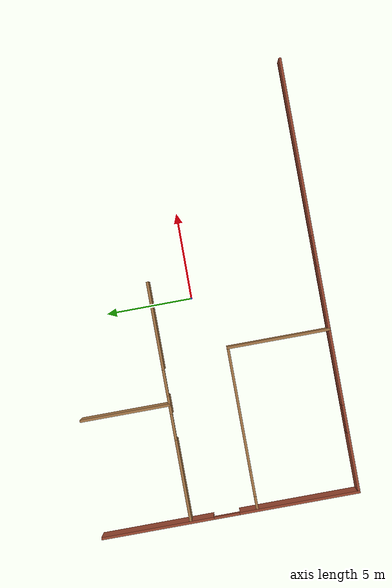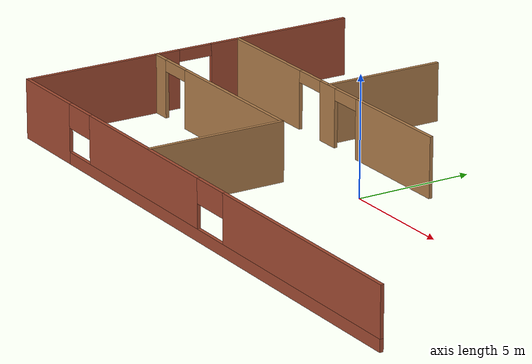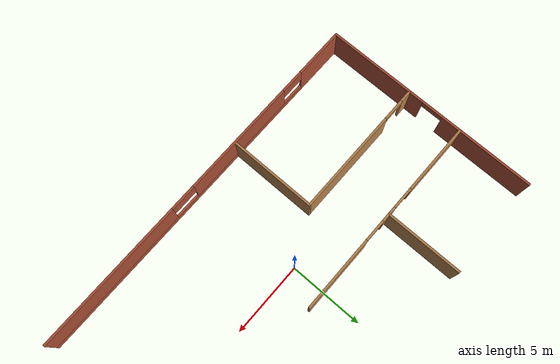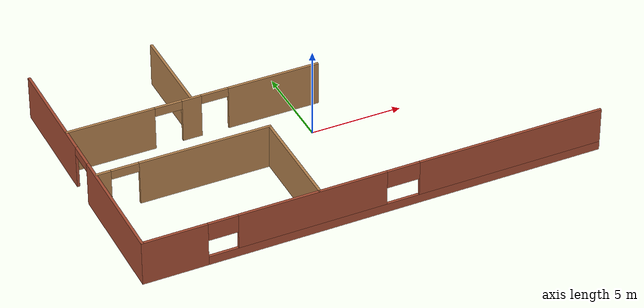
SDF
<sdf version="1.6">
 <model name="myhouse">
  <link name="Wall_1">
   <pose>-12.55 -0.012047 0 0 0 -1.5708</pose>
   <visual name="Wall_1_Visual_0">
    <pose>-4.24352 0 1.25 0 -0 0</pose>
    <geometry><box><size>6.51297 0.15 2.5</size></box></geometry>
    <material>
     <script><uri>file://media/materials/scripts/gazebo.material</uri><name>Gazebo/Bricks</name></script>
     <ambient>1 1 1 1</ambient>
     <shader type="pixel"/>
     <diffuse>1 1 1 1</diffuse>
     <specular>0.2 0.2 0.2 1</specular>
     <emissive>0 0 0 1</emissive>
    </material>
    <meta><layer>0</layer></meta>
   </visual>
   <visual name="Wall_1_Visual_1">
    <pose>4.00648 0 1.25 0 -0 0</pose>
    <geometry><box><size>6.98703 0.15 2.5</size></box></geometry>
    <material>
     <script><uri>file://media/materials/scripts/gazebo.material</uri><name>Gazebo/Bricks</name></script>
     <ambient>1 1 1 1</ambient>
     <shader type="pixel"/>
     <diffuse>1 1 1 1</diffuse>
     <specular>0.2 0.2 0.2 1</specular>
     <emissive>0 0 0 1</emissive>
    </material>
    <meta><layer>0</layer></meta>
   </visual>
   <visual name="Wall_1_Visual_2">
    <pose>-0.237035 0 2.25 0 -0 0</pose>
    <geometry><box><size>1.5 0.15 0.5</size></box></geometry>
    <material>
     <script><uri>file://media/materials/scripts/gazebo.material</uri><name>Gazebo/Bricks</name></script>
     <ambient>1 1 1 1</ambient>
     <shader type="pixel"/>
     <diffuse>1 1 1 1</diffuse>
     <specular>0.2 0.2 0.2 1</specular>
     <emissive>0 0 0 1</emissive>
    </material>
    <meta><layer>0</layer></meta>
   </visual>
   <collision name="Wall_1_Collision_0">
    <pose>-4.24352 0 1.25 0 -0 0</pose>
    <geometry><box><size>6.51297 0.15 2.5</size></box></geometry>
    <surface>
     <friction>
      <ode><mu>1</mu><mu2>1</mu2><fdir1>0 0 0</fdir1><slip1>0</slip1><slip2>0</slip2></ode>
      <torsional>
       <coefficient>1</coefficient>
       <patch_radius>0</patch_radius>
       <surface_radius>0</surface_radius>
       <use_patch_radius>1</use_patch_radius>
       <ode><slip>0</slip></ode>
      </torsional>
     </friction>
     <bounce><restitution_coefficient>0</restitution_coefficient><threshold>1e+06</threshold></bounce>
     <contact>
      <collide_without_contact>0</collide_without_contact>
      <collide_without_contact_bitmask>1</collide_without_contact_bitmask>
      <collide_bitmask>1</collide_bitmask>
      <ode>
       <soft_cfm>0</soft_cfm>
       <soft_erp>0.2</soft_erp>
       <kp>1e+13</kp>
       <kd>1</kd>
       <max_vel>0.01</max_vel>
       <min_depth>0</min_depth>
      </ode>
      <bullet>
       <split_impulse>1</split_impulse>
       <split_impulse_penetration_threshold>-0.01</split_impulse_penetration_threshold>
       <soft_cfm>0</soft_cfm>
       <soft_erp>0.2</soft_erp>
       <kp>1e+13</kp>
       <kd>1</kd>
      </bullet>
     </contact>
    </surface>
   </collision>
   <collision name="Wall_1_Collision_1">
    <pose>4.00648 0 1.25 0 -0 0</pose>
    <geometry><box><size>6.98703 0.15 2.5</size></box></geometry>
    <surface>
     <friction>
      <ode><mu>1</mu><mu2>1</mu2><fdir1>0 0 0</fdir1><slip1>0</slip1><slip2>0</slip2></ode>
      <torsional>
       <coefficient>1</coefficient>
       <patch_radius>0</patch_radius>
       <surface_radius>0</surface_radius>
       <use_patch_radius>1</use_patch_radius>
       <ode><slip>0</slip></ode>
      </torsional>
     </friction>
     <bounce><restitution_coefficient>0</restitution_coefficient><threshold>1e+06</threshold></bounce>
     <contact>
      <collide_without_contact>0</collide_without_contact>
      <collide_without_contact_bitmask>1</collide_without_contact_bitmask>
      <collide_bitmask>1</collide_bitmask>
      <ode>
       <soft_cfm>0</soft_cfm>
       <soft_erp>0.2</soft_erp>
       <kp>1e+13</kp>
       <kd>1</kd>
       <max_vel>0.01</max_vel>
       <min_depth>0</min_depth>
      </ode>
      <bullet>
       <split_impulse>1</split_impulse>
       <split_impulse_penetration_threshold>-0.01</split_impulse_penetration_threshold>
       <soft_cfm>0</soft_cfm>
       <soft_erp>0.2</soft_erp>
       <kp>1e+13</kp>
       <kd>1</kd>
      </bullet>
     </contact>
    </surface>
   </collision>
   <collision name="Wall_1_Collision_2">
    <pose>-0.237035 0 2.25 0 -0 0</pose>
    <geometry><box><size>1.5 0.15 0.5</size></box></geometry>
    <surface>
     <friction>
      <ode><mu>1</mu><mu2>1</mu2><fdir1>0 0 0</fdir1><slip1>0</slip1><slip2>0</slip2></ode>
      <torsional>
       <coefficient>1</coefficient>
       <patch_radius>0</patch_radius>
       <surface_radius>0</surface_radius>
       <use_patch_radius>1</use_patch_radius>
       <ode><slip>0</slip></ode>
      </torsional>
     </friction>
     <bounce><restitution_coefficient>0</restitution_coefficient><threshold>1e+06</threshold></bounce>
     <contact>
      <collide_without_contact>0</collide_without_contact>
      <collide_without_contact_bitmask>1</collide_without_contact_bitmask>
      <collide_bitmask>1</collide_bitmask>
      <ode>
       <soft_cfm>0</soft_cfm>
       <soft_erp>0.2</soft_erp>
       <kp>1e+13</kp>
       <kd>1</kd>
       <max_vel>0.01</max_vel>
       <min_depth>0</min_depth>
      </ode>
      <bullet>
       <split_impulse>1</split_impulse>
       <split_impulse_penetration_threshold>-0.01</split_impulse_penetration_threshold>
       <soft_cfm>0</soft_cfm>
       <soft_erp>0.2</soft_erp>
       <kp>1e+13</kp>
       <kd>1</kd>
      </bullet>
     </contact>
    </surface>
   </collision>
  </link>
  <link name="Wall_10">
   <pose>-3.11994 -4.47756 0 0 0 -1.5708</pose>
   <visual name="Wall_10_Visual">
    <pose>0 0 1.25 0 -0 0</pose>
    <geometry><box><size>6 0.15 2.5</size></box></geometry>
    <material>
     <script><uri>file://media/materials/scripts/gazebo.material</uri><name>Gazebo/Wood</name></script>
     <ambient>0.435294 0.796078 0.67451 1</ambient>
     <shader type="pixel"/>
     <diffuse>1 1 1 1</diffuse>
     <specular>0.2 0.2 0.2 1</specular>
     <emissive>0 0 0 1</emissive>
    </material>
    <meta><layer>0</layer></meta>
   </visual>
   <collision name="Wall_10_Collision">
    <pose>0 0 1.25 0 -0 0</pose>
    <geometry><box><size>6 0.15 2.5</size></box></geometry>
    <surface>
     <friction>
      <ode><mu>1</mu><mu2>1</mu2><fdir1>0 0 0</fdir1><slip1>0</slip1><slip2>0</slip2></ode>
      <torsional>
       <coefficient>1</coefficient>
       <patch_radius>0</patch_radius>
       <surface_radius>0</surface_radius>
       <use_patch_radius>1</use_patch_radius>
       <ode><slip>0</slip></ode>
      </torsional>
     </friction>
     <bounce><restitution_coefficient>0</restitution_coefficient><threshold>1e+06</threshold></bounce>
     <contact>
      <collide_without_contact>0</collide_without_contact>
      <collide_without_contact_bitmask>1</collide_without_contact_bitmask>
      <collide_bitmask>1</collide_bitmask>
      <ode>
       <soft_cfm>0</soft_cfm>
       <soft_erp>0.2</soft_erp>
       <kp>1e+13</kp>
       <kd>1</kd>
       <max_vel>0.01</max_vel>
       <min_depth>0</min_depth>
      </ode>
      <bullet>
       <split_impulse>1</split_impulse>
       <split_impulse_penetration_threshold>-0.01</split_impulse_penetration_threshold>
       <soft_cfm>0</soft_cfm>
       <soft_erp>0.2</soft_erp>
       <kp>1e+13</kp>
       <kd>1</kd>
      </bullet>
     </contact>
    </surface>
   </collision>
  </link>
  <link name="Wall_14">
   <pose>-5.73434 4.88705 0 0 -0 1.5708</pose>
   <visual name="Wall_14_Visual">
    <pose>0 0 1.25 0 -0 0</pose>
    <geometry><box><size>5.25 0.15 2.5</size></box></geometry>
    <material>
     <script><uri>file://media/materials/scripts/gazebo.material</uri><name>Gazebo/Wood</name></script>
     <ambient>1 0 0 1</ambient>
     <shader type="pixel"/>
     <diffuse>1 1 1 1</diffuse>
     <specular>0.2 0.2 0.2 1</specular>
     <emissive>0 0 0 1</emissive>
    </material>
    <meta><layer>0</layer></meta>
   </visual>
   <collision name="Wall_14_Collision">
    <pose>0 0 1.25 0 -0 0</pose>
    <geometry><box><size>5.25 0.15 2.5</size></box></geometry>
    <surface>
     <friction>
      <ode><mu>1</mu><mu2>1</mu2><fdir1>0 0 0</fdir1><slip1>0</slip1><slip2>0</slip2></ode>
      <torsional>
       <coefficient>1</coefficient>
       <patch_radius>0</patch_radius>
       <surface_radius>0</surface_radius>
       <use_patch_radius>1</use_patch_radius>
       <ode><slip>0</slip></ode>
      </torsional>
     </friction>
     <bounce><restitution_coefficient>0</restitution_coefficient><threshold>1e+06</threshold></bounce>
     <contact>
      <collide_without_contact>0</collide_without_contact>
      <collide_without_contact_bitmask>1</collide_without_contact_bitmask>
      <collide_bitmask>1</collide_bitmask>
      <ode>
       <soft_cfm>0</soft_cfm>
       <soft_erp>0.2</soft_erp>
       <kp>1e+13</kp>
       <kd>1</kd>
       <max_vel>0.01</max_vel>
       <min_depth>0</min_depth>
      </ode>
      <bullet>
       <split_impulse>1</split_impulse>
       <split_impulse_penetration_threshold>-0.01</split_impulse_penetration_threshold>
       <soft_cfm>0</soft_cfm>
       <soft_erp>0.2</soft_erp>
       <kp>1e+13</kp>
       <kd>1</kd>
      </bullet>
     </contact>
    </surface>
   </collision>
  </link>
  <link name="Wall_2">
   <pose>0 -7.43705 0 0 -0 0</pose>
   <visual name="Wall_2_Visual_0">
    <pose>-10.8742 0 1.25 0 -0 0</pose>
    <geometry><box><size>3.50151 0.15 2.5</size></box></geometry>
    <material>
     <script><uri>file://media/materials/scripts/gazebo.material</uri><name>Gazebo/Bricks</name></script>
     <ambient>1 1 1 1</ambient>
     <shader type="pixel"/>
     <diffuse>1 1 1 1</diffuse>
     <specular>0.2 0.2 0.2 1</specular>
     <emissive>0 0 0 1</emissive>
    </material>
    <meta><layer>0</layer></meta>
   </visual>
   <visual name="Wall_2_Visual_1">
    <pose>1.75075 0 0.25 0 -0 0</pose>
    <geometry><box><size>21.7485 0.15 0.5</size></box></geometry>
    <material>
     <script><uri>file://media/materials/scripts/gazebo.material</uri><name>Gazebo/Bricks</name></script>
     <ambient>1 1 1 1</ambient>
     <shader type="pixel"/>
     <diffuse>1 1 1 1</diffuse>
     <specular>0.2 0.2 0.2 1</specular>
     <emissive>0 0 0 1</emissive>
    </material>
    <meta><layer>0</layer></meta>
   </visual>
   <visual name="Wall_2_Visual_2">
    <pose>-3.49871 0 1.5 0 -0 0</pose>
    <geometry><box><size>8.04956 0.15 2</size></box></geometry>
    <material>
     <script><uri>file://media/materials/scripts/gazebo.material</uri><name>Gazebo/Bricks</name></script>
     <ambient>1 1 1 1</ambient>
     <shader type="pixel"/>
     <diffuse>1 1 1 1</diffuse>
     <specular>0.2 0.2 0.2 1</specular>
     <emissive>0 0 0 1</emissive>
    </material>
    <meta><layer>0</layer></meta>
   </visual>
   <visual name="Wall_2_Visual_3">
    <pose>7.47553 0 1.5 0 -0 0</pose>
    <geometry><box><size>10.2989 0.15 2</size></box></geometry>
    <material>
     <script><uri>file://media/materials/scripts/gazebo.material</uri><name>Gazebo/Bricks</name></script>
     <ambient>1 1 1 1</ambient>
     <shader type="pixel"/>
     <diffuse>1 1 1 1</diffuse>
     <specular>0.2 0.2 0.2 1</specular>
     <emissive>0 0 0 1</emissive>
    </material>
    <meta><layer>0</layer></meta>
   </visual>
   <visual name="Wall_2_Visual_4">
    <pose>-8.32349 0 2 0 -0 0</pose>
    <geometry><box><size>1.6 0.15 1</size></box></geometry>
    <material>
     <script><uri>file://media/materials/scripts/gazebo.material</uri><name>Gazebo/Bricks</name></script>
     <ambient>1 1 1 1</ambient>
     <shader type="pixel"/>
     <diffuse>1 1 1 1</diffuse>
     <specular>0.2 0.2 0.2 1</specular>
     <emissive>0 0 0 1</emissive>
    </material>
    <meta><layer>0</layer></meta>
   </visual>
   <visual name="Wall_2_Visual_5">
    <pose>1.42607 0 2 0 -0 0</pose>
    <geometry><box><size>1.8 0.15 1</size></box></geometry>
    <material>
     <script><uri>file://media/materials/scripts/gazebo.material</uri><name>Gazebo/Bricks</name></script>
     <ambient>1 1 1 1</ambient>
     <shader type="pixel"/>
     <diffuse>1 1 1 1</diffuse>
     <specular>0.2 0.2 0.2 1</specular>
     <emissive>0 0 0 1</emissive>
    </material>
    <meta><layer>0</layer></meta>
   </visual>
   <collision name="Wall_2_Collision_0">
    <pose>-10.8742 0 1.25 0 -0 0</pose>
    <geometry><box><size>3.50151 0.15 2.5</size></box></geometry>
    <surface>
     <friction>
      <ode><mu>1</mu><mu2>1</mu2><fdir1>0 0 0</fdir1><slip1>0</slip1><slip2>0</slip2></ode>
      <torsional>
       <coefficient>1</coefficient>
       <patch_radius>0</patch_radius>
       <surface_radius>0</surface_radius>
       <use_patch_radius>1</use_patch_radius>
       <ode><slip>0</slip></ode>
      </torsional>
     </friction>
     <bounce><restitution_coefficient>0</restitution_coefficient><threshold>1e+06</threshold></bounce>
     <contact>
      <collide_without_contact>0</collide_without_contact>
      <collide_without_contact_bitmask>1</collide_without_contact_bitmask>
      <collide_bitmask>1</collide_bitmask>
      <ode>
       <soft_cfm>0</soft_cfm>
       <soft_erp>0.2</soft_erp>
       <kp>1e+13</kp>
       <kd>1</kd>
       <max_vel>0.01</max_vel>
       <min_depth>0</min_depth>
      </ode>
      <bullet>
       <split_impulse>1</split_impulse>
       <split_impulse_penetration_threshold>-0.01</split_impulse_penetration_threshold>
       <soft_cfm>0</soft_cfm>
       <soft_erp>0.2</soft_erp>
       <kp>1e+13</kp>
       <kd>1</kd>
      </bullet>
     </contact>
    </surface>
   </collision>
   <collision name="Wall_2_Collision_1">
    <pose>1.75075 0 0.25 0 -0 0</pose>
    <geometry><box><size>21.7485 0.15 0.5</size></box></geometry>
    <surface>
     <friction>
      <ode><mu>1</mu><mu2>1</mu2><fdir1>0 0 0</fdir1><slip1>0</slip1><slip2>0</slip2></ode>
      <torsional>
       <coefficient>1</coefficient>
       <patch_radius>0</patch_radius>
       <surface_radius>0</surface_radius>
       <use_patch_radius>1</use_patch_radius>
       <ode><slip>0</slip></ode>
      </torsional>
     </friction>
     <bounce><restitution_coefficient>0</restitution_coefficient><threshold>1e+06</threshold></bounce>
     <contact>
      <collide_without_contact>0</collide_without_contact>
      <collide_without_contact_bitmask>1</collide_without_contact_bitmask>
      <collide_bitmask>1</collide_bitmask>
      <ode>
       <soft_cfm>0</soft_cfm>
       <soft_erp>0.2</soft_erp>
       <kp>1e+13</kp>
       <kd>1</kd>
       <max_vel>0.01</max_vel>
       <min_depth>0</min_depth>
      </ode>
      <bullet>
       <split_impulse>1</split_impulse>
       <split_impulse_penetration_threshold>-0.01</split_impulse_penetration_threshold>
       <soft_cfm>0</soft_cfm>
       <soft_erp>0.2</soft_erp>
       <kp>1e+13</kp>
       <kd>1</kd>
      </bullet>
     </contact>
    </surface>
   </collision>
   <collision name="Wall_2_Collision_2">
    <pose>-3.49871 0 1.5 0 -0 0</pose>
    <geometry><box><size>8.04956 0.15 2</size></box></geometry>
    <surface>
     <friction>
      <ode><mu>1</mu><mu2>1</mu2><fdir1>0 0 0</fdir1><slip1>0</slip1><slip2>0</slip2></ode>
      <torsional>
       <coefficient>1</coefficient>
       <patch_radius>0</patch_radius>
       <surface_radius>0</surface_radius>
       <use_patch_radius>1</use_patch_radius>
       <ode><slip>0</slip></ode>
      </torsional>
     </friction>
     <bounce><restitution_coefficient>0</restitution_coefficient><threshold>1e+06</threshold></bounce>
     <contact>
      <collide_without_contact>0</collide_without_contact>
      <collide_without_contact_bitmask>1</collide_without_contact_bitmask>
      <collide_bitmask>1</collide_bitmask>
      <ode>
       <soft_cfm>0</soft_cfm>
       <soft_erp>0.2</soft_erp>
       <kp>1e+13</kp>
       <kd>1</kd>
       <max_vel>0.01</max_vel>
       <min_depth>0</min_depth>
      </ode>
      <bullet>
       <split_impulse>1</split_impulse>
       <split_impulse_penetration_threshold>-0.01</split_impulse_penetration_threshold>
       <soft_cfm>0</soft_cfm>
       <soft_erp>0.2</soft_erp>
       <kp>1e+13</kp>
       <kd>1</kd>
      </bullet>
     </contact>
    </surface>
   </collision>
   <collision name="Wall_2_Collision_3">
    <pose>7.47553 0 1.5 0 -0 0</pose>
    <geometry><box><size>10.2989 0.15 2</size></box></geometry>
    <surface>
     <friction>
      <ode><mu>1</mu><mu2>1</mu2><fdir1>0 0 0</fdir1><slip1>0</slip1><slip2>0</slip2></ode>
      <torsional>
       <coefficient>1</coefficient>
       <patch_radius>0</patch_radius>
       <surface_radius>0</surface_radius>
       <use_patch_radius>1</use_patch_radius>
       <ode><slip>0</slip></ode>
      </torsional>
     </friction>
     <bounce><restitution_coefficient>0</restitution_coefficient><threshold>1e+06</threshold></bounce>
     <contact>
      <collide_without_contact>0</collide_without_contact>
      <collide_without_contact_bitmask>1</collide_without_contact_bitmask>
      <collide_bitmask>1</collide_bitmask>
      <ode>
       <soft_cfm>0</soft_cfm>
       <soft_erp>0.2</soft_erp>
       <kp>1e+13</kp>
       <kd>1</kd>
       <max_vel>0.01</max_vel>
       <min_depth>0</min_depth>
      </ode>
      <bullet>
       <split_impulse>1</split_impulse>
       <split_impulse_penetration_threshold>-0.01</split_impulse_penetration_threshold>
       <soft_cfm>0</soft_cfm>
       <soft_erp>0.2</soft_erp>
       <kp>1e+13</kp>
       <kd>1</kd>
      </bullet>
     </contact>
    </surface>
   </collision>
   <collision name="Wall_2_Collision_5">
    <pose>1.42607 0 2 0 -0 0</pose>
    <geometry><box><size>1.8 0.15 1</size></box></geometry>
    <surface>
     <friction>
      <ode><mu>1</mu><mu2>1</mu2><fdir1>0 0 0</fdir1><slip1>0</slip1><slip2>0</slip2></ode>
      <torsional>
       <coefficient>1</coefficient>
       <patch_radius>0</patch_radius>
       <surface_radius>0</surface_radius>
       <use_patch_radius>1</use_patch_radius>
       <ode><slip>0</slip></ode>
      </torsional>
     </friction>
     <bounce><restitution_coefficient>0</restitution_coefficient><threshold>1e+06</threshold></bounce>
     <contact>
      <collide_without_contact>0</collide_without_contact>
      <collide_without_contact_bitmask>1</collide_without_contact_bitmask>
      <collide_bitmask>1</collide_bitmask>
      <ode>
       <soft_cfm>0</soft_cfm>
       <soft_erp>0.2</soft_erp>
       <kp>1e+13</kp>
       <kd>1</kd>
       <max_vel>0.01</max_vel>
       <min_depth>0</min_depth>
      </ode>
      <bullet>
       <split_impulse>1</split_impulse>
       <split_impulse_penetration_threshold>-0.01</split_impulse_penetration_threshold>
       <soft_cfm>0</soft_cfm>
       <soft_erp>0.2</soft_erp>
       <kp>1e+13</kp>
       <kd>1</kd>
      </bullet>
     </contact>
    </surface>
   </collision>
   <collision name="Wall_2_Collision_4">
    <pose>-8.32349 0 2 0 -0 0</pose>
    <geometry><box><size>1.6 0.15 1</size></box></geometry>
    <surface>
     <friction>
      <ode><mu>1</mu><mu2>1</mu2><fdir1>0 0 0</fdir1><slip1>0</slip1><slip2>0</slip2></ode>
      <torsional>
       <coefficient>1</coefficient>
       <patch_radius>0</patch_radius>
       <surface_radius>0</surface_radius>
       <use_patch_radius>1</use_patch_radius>
       <ode><slip>0</slip></ode>
      </torsional>
     </friction>
     <bounce><restitution_coefficient>0</restitution_coefficient><threshold>1e+06</threshold></bounce>
     <contact>
      <collide_without_contact>0</collide_without_contact>
      <collide_without_contact_bitmask>1</collide_without_contact_bitmask>
      <collide_bitmask>1</collide_bitmask>
      <ode>
       <soft_cfm>0</soft_cfm>
       <soft_erp>0.2</soft_erp>
       <kp>1e+13</kp>
       <kd>1</kd>
       <max_vel>0.01</max_vel>
       <min_depth>0</min_depth>
      </ode>
      <bullet>
       <split_impulse>1</split_impulse>
       <split_impulse_penetration_threshold>-0.01</split_impulse_penetration_threshold>
       <soft_cfm>0</soft_cfm>
       <soft_erp>0.2</soft_erp>
       <kp>1e+13</kp>
       <kd>1</kd>
      </bullet>
     </contact>
    </surface>
   </collision>
  </link>
  <link name="Wall_6">
   <pose>-5.59147 2.30893 0 0 -0 0</pose>
   <visual name="Wall_6_Visual_0">
    <pose>-4.58914 0 1.25 0 -0 0</pose>
    <geometry><box><size>4.82171 0.15 2.5</size></box></geometry>
    <material>
     <script><uri>file://media/materials/scripts/gazebo.material</uri><name>Gazebo/Wood</name></script>
     <ambient>1 0 0 1</ambient>
     <shader type="pixel"/>
     <diffuse>1 1 1 1</diffuse>
     <specular>0.2 0.2 0.2 1</specular>
     <emissive>0 0 0 1</emissive>
    </material>
    <meta><layer>0</layer></meta>
   </visual>
   <visual name="Wall_6_Visual_1">
    <pose>-0.14426 0 1.25 0 -0 0</pose>
    <geometry><box><size>1.06805 0.15 2.5</size></box></geometry>
    <material>
     <script><uri>file://media/materials/scripts/gazebo.material</uri><name>Gazebo/Wood</name></script>
     <ambient>1 0 0 1</ambient>
     <shader type="pixel"/>
     <diffuse>1 1 1 1</diffuse>
     <specular>0.2 0.2 0.2 1</specular>
     <emissive>0 0 0 1</emissive>
    </material>
    <meta><layer>0</layer></meta>
   </visual>
   <visual name="Wall_6_Visual_2">
    <pose>4.44488 0 1.25 0 -0 0</pose>
    <geometry><box><size>5.11024 0.15 2.5</size></box></geometry>
    <material>
     <script><uri>file://media/materials/scripts/gazebo.material</uri><name>Gazebo/Wood</name></script>
     <ambient>1 0 0 1</ambient>
     <shader type="pixel"/>
     <diffuse>1 1 1 1</diffuse>
     <specular>0.2 0.2 0.2 1</specular>
     <emissive>0 0 0 1</emissive>
    </material>
    <meta><layer>0</layer></meta>
   </visual>
   <visual name="Wall_6_Visual_3">
    <pose>-1.42829 0 2.25 0 -0 0</pose>
    <geometry><box><size>1.5 0.15 0.5</size></box></geometry>
    <material>
     <script><uri>file://media/materials/scripts/gazebo.material</uri><name>Gazebo/Wood</name></script>
     <ambient>1 0 0 1</ambient>
     <shader type="pixel"/>
     <diffuse>1 1 1 1</diffuse>
     <specular>0.2 0.2 0.2 1</specular>
     <emissive>0 0 0 1</emissive>
    </material>
    <meta><layer>0</layer></meta>
   </visual>
   <visual name="Wall_6_Visual_4">
    <pose>1.13976 0 2.25 0 -0 0</pose>
    <geometry><box><size>1.5 0.15 0.5</size></box></geometry>
    <material>
     <script><uri>file://media/materials/scripts/gazebo.material</uri><name>Gazebo/Wood</name></script>
     <ambient>1 0 0 1</ambient>
     <shader type="pixel"/>
     <diffuse>1 1 1 1</diffuse>
     <specular>0.2 0.2 0.2 1</specular>
     <emissive>0 0 0 1</emissive>
    </material>
    <meta><layer>0</layer></meta>
   </visual>
   <collision name="Wall_6_Collision_0">
    <pose>-4.58914 0 1.25 0 -0 0</pose>
    <geometry><box><size>4.82171 0.15 2.5</size></box></geometry>
    <surface>
     <friction>
      <ode><mu>1</mu><mu2>1</mu2><fdir1>0 0 0</fdir1><slip1>0</slip1><slip2>0</slip2></ode>
      <torsional>
       <coefficient>1</coefficient>
       <patch_radius>0</patch_radius>
       <surface_radius>0</surface_radius>
       <use_patch_radius>1</use_patch_radius>
       <ode><slip>0</slip></ode>
      </torsional>
     </friction>
     <bounce><restitution_coefficient>0</restitution_coefficient><threshold>1e+06</threshold></bounce>
     <contact>
      <collide_without_contact>0</collide_without_contact>
      <collide_without_contact_bitmask>1</collide_without_contact_bitmask>
      <collide_bitmask>1</collide_bitmask>
      <ode>
       <soft_cfm>0</soft_cfm>
       <soft_erp>0.2</soft_erp>
       <kp>1e+13</kp>
       <kd>1</kd>
       <max_vel>0.01</max_vel>
       <min_depth>0</min_depth>
      </ode>
      <bullet>
       <split_impulse>1</split_impulse>
       <split_impulse_penetration_threshold>-0.01</split_impulse_penetration_threshold>
       <soft_cfm>0</soft_cfm>
       <soft_erp>0.2</soft_erp>
       <kp>1e+13</kp>
       <kd>1</kd>
      </bullet>
     </contact>
    </surface>
   </collision>
   <collision name="Wall_6_Collision_2">
    <pose>4.44488 0 1.25 0 -0 0</pose>
    <geometry><box><size>5.11024 0.15 2.5</size></box></geometry>
    <surface>
     <friction>
      <ode><mu>1</mu><mu2>1</mu2><fdir1>0 0 0</fdir1><slip1>0</slip1><slip2>0</slip2></ode>
      <torsional>
       <coefficient>1</coefficient>
       <patch_radius>0</patch_radius>
       <surface_radius>0</surface_radius>
       <use_patch_radius>1</use_patch_radius>
       <ode><slip>0</slip></ode>
      </torsional>
     </friction>
     <bounce><restitution_coefficient>0</restitution_coefficient><threshold>1e+06</threshold></bounce>
     <contact>
      <collide_without_contact>0</collide_without_contact>
      <collide_without_contact_bitmask>1</collide_without_contact_bitmask>
      <collide_bitmask>1</collide_bitmask>
      <ode>
       <soft_cfm>0</soft_cfm>
       <soft_erp>0.2</soft_erp>
       <kp>1e+13</kp>
       <kd>1</kd>
       <max_vel>0.01</max_vel>
       <min_depth>0</min_depth>
      </ode>
      <bullet>
       <split_impulse>1</split_impulse>
       <split_impulse_penetration_threshold>-0.01</split_impulse_penetration_threshold>
       <soft_cfm>0</soft_cfm>
       <soft_erp>0.2</soft_erp>
       <kp>1e+13</kp>
       <kd>1</kd>
      </bullet>
     </contact>
    </surface>
   </collision>
   <collision name="Wall_6_Collision_1">
    <pose>-0.14426 0 1.25 0 -0 0</pose>
    <geometry><box><size>1.06805 0.15 2.5</size></box></geometry>
    <surface>
     <friction>
      <ode><mu>1</mu><mu2>1</mu2><fdir1>0 0 0</fdir1><slip1>0</slip1><slip2>0</slip2></ode>
      <torsional>
       <coefficient>1</coefficient>
       <patch_radius>0</patch_radius>
       <surface_radius>0</surface_radius>
       <use_patch_radius>1</use_patch_radius>
       <ode><slip>0</slip></ode>
      </torsional>
     </friction>
     <bounce><restitution_coefficient>0</restitution_coefficient><threshold>1e+06</threshold></bounce>
     <contact>
      <collide_without_contact>0</collide_without_contact>
      <collide_without_contact_bitmask>1</collide_without_contact_bitmask>
      <collide_bitmask>1</collide_bitmask>
      <ode>
       <soft_cfm>0</soft_cfm>
       <soft_erp>0.2</soft_erp>
       <kp>1e+13</kp>
       <kd>1</kd>
       <max_vel>0.01</max_vel>
       <min_depth>0</min_depth>
      </ode>
      <bullet>
       <split_impulse>1</split_impulse>
       <split_impulse_penetration_threshold>-0.01</split_impulse_penetration_threshold>
       <soft_cfm>0</soft_cfm>
       <soft_erp>0.2</soft_erp>
       <kp>1e+13</kp>
       <kd>1</kd>
      </bullet>
     </contact>
    </surface>
   </collision>
   <collision name="Wall_6_Collision_3">
    <pose>-1.42829 0 2.25 0 -0 0</pose>
    <geometry><box><size>1.5 0.15 0.5</size></box></geometry>
    <surface>
     <friction>
      <ode><mu>1</mu><mu2>1</mu2><fdir1>0 0 0</fdir1><slip1>0</slip1><slip2>0</slip2></ode>
      <torsional>
       <coefficient>1</coefficient>
       <patch_radius>0</patch_radius>
       <surface_radius>0</surface_radius>
       <use_patch_radius>1</use_patch_radius>
       <ode><slip>0</slip></ode>
      </torsional>
     </friction>
     <bounce><restitution_coefficient>0</restitution_coefficient><threshold>1e+06</threshold></bounce>
     <contact>
      <collide_without_contact>0</collide_without_contact>
      <collide_without_contact_bitmask>1</collide_without_contact_bitmask>
      <collide_bitmask>1</collide_bitmask>
      <ode>
       <soft_cfm>0</soft_cfm>
       <soft_erp>0.2</soft_erp>
       <kp>1e+13</kp>
       <kd>1</kd>
       <max_vel>0.01</max_vel>
       <min_depth>0</min_depth>
      </ode>
      <bullet>
       <split_impulse>1</split_impulse>
       <split_impulse_penetration_threshold>-0.01</split_impulse_penetration_threshold>
       <soft_cfm>0</soft_cfm>
       <soft_erp>0.2</soft_erp>
       <kp>1e+13</kp>
       <kd>1</kd>
      </bullet>
     </contact>
    </surface>
   </collision>
   <collision name="Wall_6_Collision_4">
    <pose>1.13976 0 2.25 0 -0 0</pose>
    <geometry><box><size>1.5 0.15 0.5</size></box></geometry>
    <surface>
     <friction>
      <ode><mu>1</mu><mu2>1</mu2><fdir1>0 0 0</fdir1><slip1>0</slip1><slip2>0</slip2></ode>
      <torsional>
       <coefficient>1</coefficient>
       <patch_radius>0</patch_radius>
       <surface_radius>0</surface_radius>
       <use_patch_radius>1</use_patch_radius>
       <ode><slip>0</slip></ode>
      </torsional>
     </friction>
     <bounce><restitution_coefficient>0</restitution_coefficient><threshold>1e+06</threshold></bounce>
     <contact>
      <collide_without_contact>0</collide_without_contact>
      <collide_without_contact_bitmask>1</collide_without_contact_bitmask>
      <collide_bitmask>1</collide_bitmask>
      <ode>
       <soft_cfm>0</soft_cfm>
       <soft_erp>0.2</soft_erp>
       <kp>1e+13</kp>
       <kd>1</kd>
       <max_vel>0.01</max_vel>
       <min_depth>0</min_depth>
      </ode>
      <bullet>
       <split_impulse>1</split_impulse>
       <split_impulse_penetration_threshold>-0.01</split_impulse_penetration_threshold>
       <soft_cfm>0</soft_cfm>
       <soft_erp>0.2</soft_erp>
       <kp>1e+13</kp>
       <kd>1</kd>
      </bullet>
     </contact>
    </surface>
   </collision>
  </link>
  <link name="Wall_9">
   <pose>-7.79495 -1.55256 0 0 -0 0</pose>
   <visual name="Wall_9_Visual_0">
    <pose>-4.35154 0 1.25 0 -0 0</pose>
    <geometry><box><size>0.796919 0.15 2.5</size></box></geometry>
    <material>
     <script><uri>file://media/materials/scripts/gazebo.material</uri><name>Gazebo/Wood</name></script>
     <ambient>0.435294 0.796078 0.67451 1</ambient>
     <shader type="pixel"/>
     <diffuse>1 1 1 1</diffuse>
     <specular>0.2 0.2 0.2 1</specular>
     <emissive>0 0 0 1</emissive>
    </material>
    <meta><layer>0</layer></meta>
   </visual>
   <visual name="Wall_9_Visual_1">
    <pose>1.14846 0 1.25 0 -0 0</pose>
    <geometry><box><size>7.20308 0.15 2.5</size></box></geometry>
    <material>
     <script><uri>file://media/materials/scripts/gazebo.material</uri><name>Gazebo/Wood</name></script>
     <ambient>0.435294 0.796078 0.67451 1</ambient>
     <shader type="pixel"/>
     <diffuse>1 1 1 1</diffuse>
     <specular>0.2 0.2 0.2 1</specular>
     <emissive>0 0 0 1</emissive>
    </material>
    <meta><layer>0</layer></meta>
   </visual>
   <visual name="Wall_9_Visual_2">
    <pose>-3.20308 0 2.25 0 -0 0</pose>
    <geometry><box><size>1.5 0.15 0.5</size></box></geometry>
    <material>
     <script><uri>file://media/materials/scripts/gazebo.material</uri><name>Gazebo/Wood</name></script>
     <ambient>0.435294 0.796078 0.67451 1</ambient>
     <shader type="pixel"/>
     <diffuse>1 1 1 1</diffuse>
     <specular>0.2 0.2 0.2 1</specular>
     <emissive>0 0 0 1</emissive>
    </material>
    <meta><layer>0</layer></meta>
   </visual>
   <collision name="Wall_9_Collision_0">
    <pose>-4.35154 0 1.25 0 -0 0</pose>
    <geometry><box><size>0.796919 0.15 2.5</size></box></geometry>
    <surface>
     <friction>
      <ode><mu>1</mu><mu2>1</mu2><fdir1>0 0 0</fdir1><slip1>0</slip1><slip2>0</slip2></ode>
      <torsional>
       <coefficient>1</coefficient>
       <patch_radius>0</patch_radius>
       <surface_radius>0</surface_radius>
       <use_patch_radius>1</use_patch_radius>
       <ode><slip>0</slip></ode>
      </torsional>
     </friction>
     <bounce><restitution_coefficient>0</restitution_coefficient><threshold>1e+06</threshold></bounce>
     <contact>
      <collide_without_contact>0</collide_without_contact>
      <collide_without_contact_bitmask>1</collide_without_contact_bitmask>
      <collide_bitmask>1</collide_bitmask>
      <ode>
       <soft_cfm>0</soft_cfm>
       <soft_erp>0.2</soft_erp>
       <kp>1e+13</kp>
       <kd>1</kd>
       <max_vel>0.01</max_vel>
       <min_depth>0</min_depth>
      </ode>
      <bullet>
       <split_impulse>1</split_impulse>
       <split_impulse_penetration_threshold>-0.01</split_impulse_penetration_threshold>
       <soft_cfm>0</soft_cfm>
       <soft_erp>0.2</soft_erp>
       <kp>1e+13</kp>
       <kd>1</kd>
      </bullet>
     </contact>
    </surface>
   </collision>
   <collision name="Wall_9_Collision_1">
    <pose>1.14846 0 1.25 0 -0 0</pose>
    <geometry><box><size>7.20308 0.15 2.5</size></box></geometry>
    <surface>
     <friction>
      <ode><mu>1</mu><mu2>1</mu2><fdir1>0 0 0</fdir1><slip1>0</slip1><slip2>0</slip2></ode>
      <torsional>
       <coefficient>1</coefficient>
       <patch_radius>0</patch_radius>
       <surface_radius>0</surface_radius>
       <use_patch_radius>1</use_patch_radius>
       <ode><slip>0</slip></ode>
      </torsional>
     </friction>
     <bounce><restitution_coefficient>0</restitution_coefficient><threshold>1e+06</threshold></bounce>
     <contact>
      <collide_without_contact>0</collide_without_contact>
      <collide_without_contact_bitmask>1</collide_without_contact_bitmask>
      <collide_bitmask>1</collide_bitmask>
      <ode>
       <soft_cfm>0</soft_cfm>
       <soft_erp>0.2</soft_erp>
       <kp>1e+13</kp>
       <kd>1</kd>
       <max_vel>0.01</max_vel>
       <min_depth>0</min_depth>
      </ode>
      <bullet>
       <split_impulse>1</split_impulse>
       <split_impulse_penetration_threshold>-0.01</split_impulse_penetration_threshold>
       <soft_cfm>0</soft_cfm>
       <soft_erp>0.2</soft_erp>
       <kp>1e+13</kp>
       <kd>1</kd>
      </bullet>
     </contact>
    </surface>
   </collision>
   <collision name="Wall_9_Collision_2">
    <pose>-3.20308 0 2.25 0 -0 0</pose>
    <geometry><box><size>1.5 0.15 0.5</size></box></geometry>
    <surface>
     <friction>
      <ode><mu>1</mu><mu2>1</mu2><fdir1>0 0 0</fdir1><slip1>0</slip1><slip2>0</slip2></ode>
      <torsional>
       <coefficient>1</coefficient>
       <patch_radius>0</patch_radius>
       <surface_radius>0</surface_radius>
       <use_patch_radius>1</use_patch_radius>
       <ode><slip>0</slip></ode>
      </torsional>
     </friction>
     <bounce><restitution_coefficient>0</restitution_coefficient><threshold>1e+06</threshold></bounce>
     <contact>
      <collide_without_contact>0</collide_without_contact>
      <collide_without_contact_bitmask>1</collide_without_contact_bitmask>
      <collide_bitmask>1</collide_bitmask>
      <ode>
       <soft_cfm>0</soft_cfm>
       <soft_erp>0.2</soft_erp>
       <kp>1e+13</kp>
       <kd>1</kd>
       <max_vel>0.01</max_vel>
       <min_depth>0</min_depth>
      </ode>
      <bullet>
       <split_impulse>1</split_impulse>
       <split_impulse_penetration_threshold>-0.01</split_impulse_penetration_threshold>
       <soft_cfm>0</soft_cfm>
       <soft_erp>0.2</soft_erp>
       <kp>1e+13</kp>
       <kd>1</kd>
      </bullet>
     </contact>
    </surface>
   </collision>
  </link>
  <static>1</static>
 </model>
</sdf>
